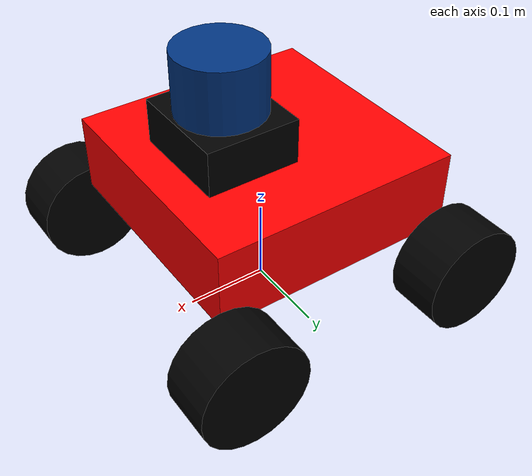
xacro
<?xml version="1.0"?>
<robot name="leo" xmlns:xacro="http://www.ros.org/wiki/xacro">
    <!-- This version includes the wheels as cont. joints and they have axis and dynamics-->
    <!-- Base Link -->
    <link name="base_link">

    </link>

    <joint name="chassis_joint" type="fixed">
        <parent link="base_link" />
        <child link="chassis" />
        <origin xyz="0.0 0.0 0.0645" />
    </joint>

    <!-- Chassis Link -->
    <link name="chassis">
        <visual>
            <origin xyz="0.0 0.0 0.0895" />
            <geometry>
                <box size="0.295 0.289 0.092" />
            </geometry>
            <material name="red" />
        </visual>
        <collision>  <!-- Add this -->
            <origin xyz="0.0 0.0 0.0895" />
            <geometry>
                <box size="0.295 0.289 0.092" />
            </geometry>
        </collision>
        <inertial>
            <mass value="10" />
            <inertia ixx="0.1" ixy="0" ixz="0" iyy="0.1" iyz="0" izz="0.15" />
        </inertial>
    </link>

    <!-- Wheel links and joints-->
    <link name="wheel_fl">
        <visual>
            <geometry>
                <cylinder radius="0.0645" length="0.065" />
            </geometry>
            <material name="black" />
        </visual>
        <collision>
            <geometry>
                <cylinder radius="0.0645" length="0.065" />
            </geometry>
        </collision>
        <inertial>
            <mass value="0.5" />
            <inertia ixx="0.01" ixy="0" ixz="0" iyy="0.01" iyz="0" izz="0.01" />
        </inertial>
    </link>

    <joint name="wheel_fl_chassis" type="continuous">
        <origin xyz="0.1475 0.177 0.0" rpy="-1.5708 0 0" />
        <parent link="chassis" />
        <child link="wheel_fl" />
        <axis xyz="0 0 1" />
        <dynamics damping="0.0" friction="0.0" />
    </joint>

    <link name="wheel_fr">
        <visual>
            <geometry>
                <cylinder radius="0.0645" length="0.065" />
            </geometry>
            <material name="black" />
        </visual>
        <collision>
            <geometry>
                <cylinder radius="0.0645" length="0.065" />
            </geometry>
        </collision>
        <inertial>
            <mass value="0.5" />
            <inertia ixx="0.01" ixy="0" ixz="0" iyy="0.01" iyz="0" izz="0.01" />
        </inertial>
    </link>

    <joint name="wheel_fr_chassis" type="continuous">
        <origin xyz="0.1475 -0.177 0.0" rpy="-1.5708 0 0" />
        <parent link="chassis" />
        <child link="wheel_fr" />
        <axis xyz="0 0 1" />
        <dynamics damping="0.0" friction="0.0" />
    </joint>

    <link name="wheel_rl">
        <visual>
            <geometry>
                <cylinder radius="0.0645" length="0.065" />
            </geometry>
            <material name="black" />
        </visual>
        <collision>
            <geometry>
                <cylinder radius="0.0645" length="0.065" />
            </geometry>
        </collision>
        <inertial>
            <mass value="0.5" />
            <inertia ixx="0.01" ixy="0" ixz="0" iyy="0.01" iyz="0" izz="0.01" />
        </inertial>
    </link>

    <joint name="wheel_rl_chassis" type="continuous">
        <origin xyz="-0.1475 0.177 0.0" rpy="-1.5708 0 0" />
        <parent link="chassis" />
        <child link="wheel_rl" />
        <axis xyz="0 0 1" />
        <dynamics damping="0.0" friction="0.0" />
    </joint>

    <link name="wheel_rr">
        <visual>
            <geometry>
                <cylinder radius="0.0645" length="0.065" />
            </geometry>
            <material name="black" />
        </visual>
        <collision>
            <geometry>
                <cylinder radius="0.0645" length="0.065" />
            </geometry>
        </collision>
        <inertial>
            <mass value="0.5" />
            <inertia ixx="0.01" ixy="0" ixz="0" iyy="0.01" iyz="0" izz="0.01" />
        </inertial>
    </link>

    <joint name="wheel_rr_chassis" type="continuous">
        <origin xyz="-0.1475 -0.177 0.0" rpy="-1.5708 0 0" />
        <parent link="chassis" />
        <child link="wheel_rr" />
        <axis xyz="0 0 1" />
        <dynamics damping="0.0" friction="0.0" />
    </joint>

    <!-- Jetson Mount -->
    <link name="jetson_mount">
        <visual>
            <geometry>
                <box size="0.110 0.123 0.053" />
            </geometry>
            <material name="black" />  <!-- or whatever color you want -->
        </visual>
        <collision>
            <geometry>
                <box size="0.110 0.123 0.053" />
            </geometry>
        </collision>
    </link>

    <joint name="jetson_mount_joint" type="fixed">
        <parent link="chassis" />
        <child link="jetson_mount" />
        <origin xyz="0.05 0 0.162" rpy="0 0 0" />
    </joint>

    <!-- Lidar -->
    <link name="velodyne">
        <visual>
            <geometry>
                <cylinder radius="0.0516" length="0.0717" />
            </geometry>
            <material name="dark_blue" />
        </visual>
        <collision>
            <geometry>
                <cylinder radius="0.0516" length="0.0717" />
            </geometry>
        </collision>
    </link>

    <joint name="velodyne_joint" type="fixed">
        <parent link="chassis" />
        <child link="velodyne" />
        <origin xyz="0.05 0 0.22435" rpy="0 0 0" />
    </joint>

    <material name="black">
        <color rgba="0.0 0.0 0.0 1.0" />
    </material>

    <material name="dark_blue">
        <color rgba="0.0 0.2 0.5 1.0" />
    </material>

    <material name="red">
        <color rgba="1.0 0.0 0.0 1.0" />
    </material>

    <!-- Controller type -->
    <gazebo>
        <plugin name="differential_drive_controller" filename="libgazebo_ros_diff_drive.so">
            <update_rate>30.0</update_rate>

            <num_wheel_pairs>2</num_wheel_pairs>

            <left_joint>wheel_fl_chassis</left_joint>
            <left_joint>wheel_rl_chassis</left_joint>
            <right_joint>wheel_fr_chassis</right_joint>
            <right_joint>wheel_rr_chassis</right_joint>

            <wheel_separation>0.354</wheel_separation>
            <wheel_diameter>0.129</wheel_diameter>

            <max_wheel_torque>1000</max_wheel_torque>
            <max_wheel_acceleration>100.0</max_wheel_acceleration>

            <command_topic>cmd_vel</command_topic>
            <odometry_topic>odom</odometry_topic>
            <odometry_frame>odom</odometry_frame>
            <robot_base_frame>base_link</robot_base_frame>

            <publish_odom>true</publish_odom>
            <publish_odom_tf>true</publish_odom_tf>
            <publish_wheel_tf>true</publish_wheel_tf>
        </plugin>
    </gazebo>

    <gazebo reference="chassis">
        <material>Gazebo/Red</material>
    </gazebo>

    <gazebo reference="wheel_fl">
        <material>Gazebo/Black</material>
        <mu1>10.0</mu1>
        <mu2>10.0</mu2>
        <kp>1000000.0</kp>
        <kd>10.0</kd>
    </gazebo>

    <gazebo reference="wheel_fr">
        <material>Gazebo/Black</material>
        <mu1>10.0</mu1>
        <mu2>10.0</mu2>
        <kp>1000000.0</kp>
        <kd>10.0</kd>
    </gazebo>

    <gazebo reference="wheel_rl">
        <material>Gazebo/Black</material>
        <mu1>10.0</mu1>
        <mu2>10.0</mu2>
        <kp>1000000.0</kp>
        <kd>10.0</kd>
    </gazebo>

    <gazebo reference="wheel_rr">
        <material>Gazebo/Black</material>
        <mu1>10.0</mu1>
        <mu2>10.0</mu2>
        <kp>1000000.0</kp>
        <kd>10.0</kd>
    </gazebo>

    <gazebo reference="velodyne">
        <material>Gazebo/Black</material>
    </gazebo>

    <!-- Lidar Parameters-->
    <gazebo reference="velodyne">
        <sensor type="ray" name="velodyne_sensor">
            <pose>0 0 0 0 0 0</pose>
            <visualize>false</visualize>
            <update_rate>10</update_rate>
            <ray>
                <scan>
                    <horizontal>
                        <samples>360</samples>
                        <resolution>1</resolution>
                        <min_angle>0.0</min_angle>
                        <max_angle>6.28319</max_angle>
                    </horizontal>
                    <vertical>
                        <samples>16</samples>
                        <resolution>1</resolution>
                        <min_angle>-0.261799</min_angle>
                        <max_angle>0.261799</max_angle>
                    </vertical>
                </scan>
                <range>
                    <min>0.1</min>
                    <max>100.0</max>
                    <resolution>0.01</resolution>
                </range>
            </ray>
            <plugin name="gazebo_ros_velodyne_laser" filename="libgazebo_ros_velodyne_laser.so">
                <ros>
                    <remapping>~/out:=velodyne_points</remapping>
                </ros>
                <output_type>sensor_msgs/PointCloud2</output_type>
                <frame_name>velodyne</frame_name>
            </plugin>
        </sensor>
    </gazebo>

    <!-- State publisher -->
    <gazebo>
        <plugin name="gazebo_ros_joint_state_publisher"
            filename="libgazebo_ros_joint_state_publisher.so">
            <update_rate>50</update_rate>
            <joint_name>wheel_fl_chassis</joint_name>
            <joint_name>wheel_fr_chassis</joint_name>
            <joint_name>wheel_rl_chassis</joint_name>
            <joint_name>wheel_rr_chassis</joint_name>
        </plugin>
    </gazebo>
</robot>
